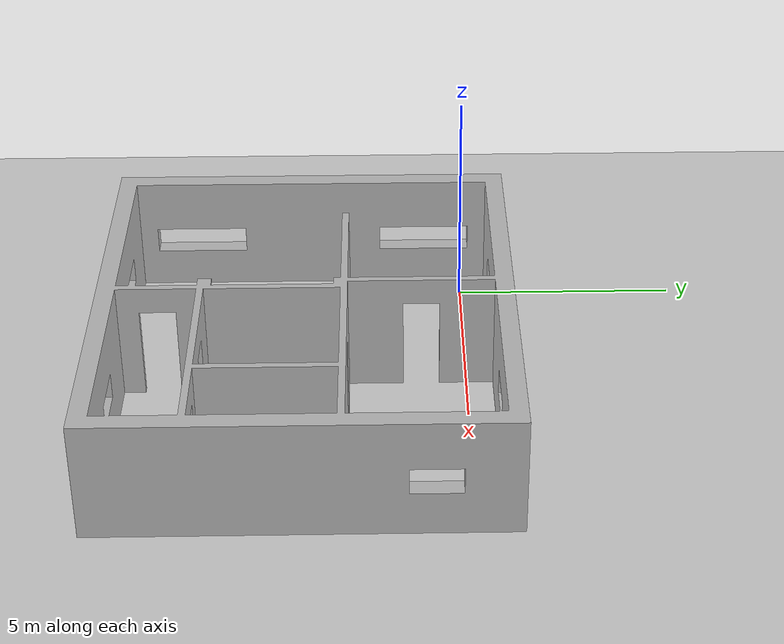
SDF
<?xml version="1.0" ?>
<sdf version="1.7">
  <world name="full_world">

    <!-- Gravità -->
    <gravity>0 0 -9.81</gravity>

    <!-- Luce ambientale -->
    <scene>
      <ambient>0.4 0.4 0.4 1</ambient>
      <background>0.7 0.7 0.7 1</background>
    </scene>

    <!-- Pavimento -->
    <model name='ground_plane'>
      <static>true</static>
      <link name='link'>
        <collision name='collision'>
          <geometry>
            <plane>
              <normal>0 0 1</normal>
              <size>100 100</size>
            </plane>
          </geometry>
          <surface>
            <friction>
              <ode/>
            </friction>
            <bounce/>
            <contact/>
          </surface>
        </collision>
        <visual name='visual'>
          <geometry>
            <plane>
              <normal>0 0 1</normal>
              <size>100 100</size>
            </plane>
          </geometry>
          <material>
            <ambient>0.8 0.8 0.8 1</ambient>
            <diffuse>0.8 0.8 0.8 1</diffuse>
            <specular>0.8 0.8 0.8 1</specular>
          </material>
        </visual>
        <pose>0 0 0 0 -0 0</pose>
        <inertial>
          <pose>0 0 0 0 -0 0</pose>
          <mass>1</mass>
          <inertia>
            <ixx>1</ixx>
            <ixy>0</ixy>
            <ixz>0</ixz>
            <iyy>1</iyy>
            <iyz>0</iyz>
            <izz>1</izz>
          </inertia>
        </inertial>
        <enable_wind>false</enable_wind>
      </link>
      <pose>0 0 0 0 -0 0</pose>
      <self_collide>false</self_collide>
    </model>

    <!-- Mesh del mondo -->
    <model name="static_environment">
      <static>true</static>
      <pose>-1 1 0 0 0 0</pose>
      <link name="link">
        <visual name="visual">
          <geometry>
            <mesh>
              <uri>file:///home/carlo/ros_ws/spazz_ws_clone/src/cleanbit_simulate/meshes/casa_spazzino.stl</uri>
              <scale>0.001 0.001 0.001</scale>
            </mesh>
          </geometry>
        </visual>
        <collision name="collision">
          <geometry>
            <mesh>
              <uri>file:///home/carlo/ros_ws/spazz_ws_clone/src/cleanbit_simulate/meshes/casa_spazzino.stl</uri>
              <scale>0.001 0.001 0.001</scale>
            </mesh>
          </geometry>
        </collision>
      </link>
    </model>

  </world>
</sdf>
